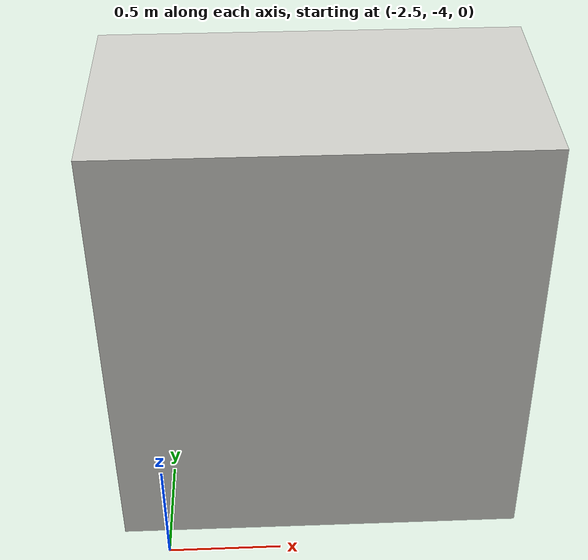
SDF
<?xml version='1.0'?>
<sdf version='1.7'>
  <model name='box_1.8_1_2'>
    <pose>-1.355 -1.94 0 0 -0 0</pose>
    <link name='Wall_0'>
      <collision name='Wall_0_Collision'>
        <geometry>
          <box>
            <size>1.8 1 2</size>
          </box>
        </geometry>
        <pose>0 0 1 0 -0 0</pose>
      </collision>
      <visual name='Wall_0_Visual'>
        <pose>0 0 1 0 -0 0</pose>
        <geometry>
          <box>
            <size>1.8 1 2</size>
          </box>
        </geometry>
        <material>
          <script>
            <uri>file://media/materials/scripts/gazebo.material</uri>
            <name>Gazebo/CeilingTiled</name>
          </script>
          <ambient>0.921569 0.807843 0.615686 1</ambient>
        </material>
        <meta>
          <layer>0</layer>
        </meta>
      </visual>
      <pose>-0.455 -1.44 0 0 -0 0</pose>
    </link>
    <static>1</static>
  </model>
</sdf>
